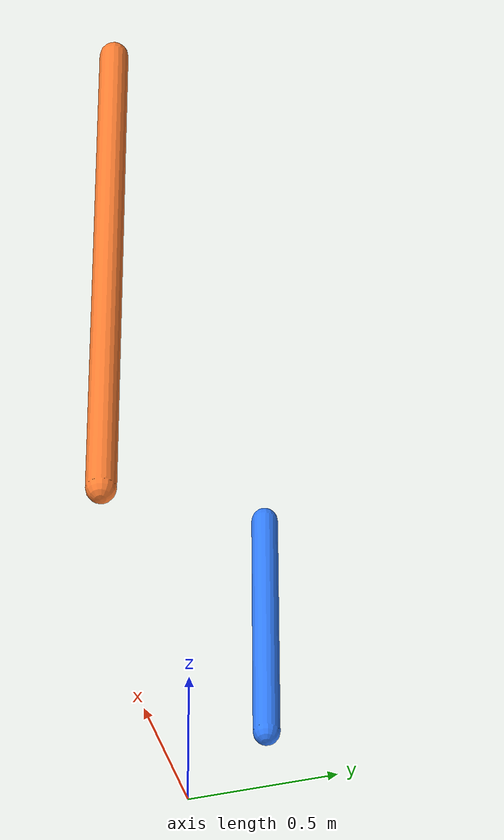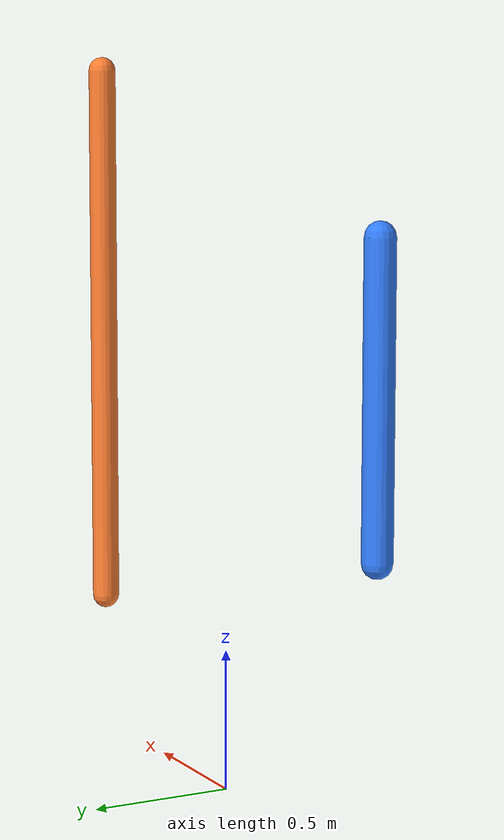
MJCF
<mujoco>
  <option gravity="0 0 -9.81"/>
  <worldbody>
    <body name="pivot_short" pos="-1 0 2"/>
    <body name="pivot_long" pos="1 0 2.5"/>

    <body name="pendulum_short" pos="-1 0 2">
      <joint name="swing_short" type="hinge" axis="0 1 0"/>
      <geom type="capsule" fromto="0 0 0 0 0 -1" size="0.05" density="0.5" rgba="0.2 0.5 1 1"/>
    </body>

    <body name="pendulum_long" pos="1 0 2.5">
      <joint name="swing_long" type="hinge" axis="0 1 0"/>
      <geom type="capsule" fromto="0 0 0 0 0 -2" size="0.05" density="0.5" rgba="1 0.5 0.2 1"/>
    </body>
  </worldbody>
</mujoco>
